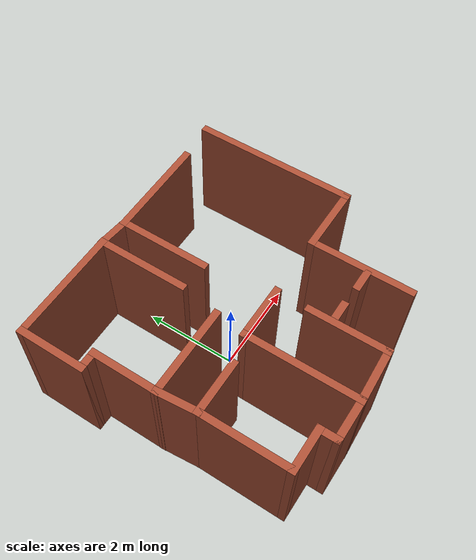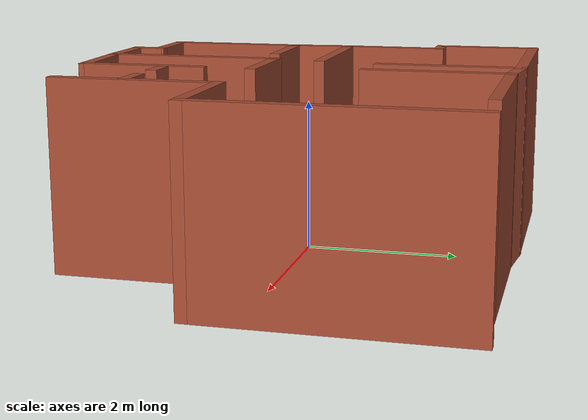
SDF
<?xml version='1.0'?>
<sdf version='1.7'>
  <model name='small_house'>
    <pose>0.316148 -0.105658 0 0 -0 0</pose>
    <link name='Wall_1'>
      <collision name='Wall_1_Collision'>
        <geometry>
          <box>
            <size>1.5 0.15 2.5</size>
          </box>
        </geometry>
        <pose>0 0 1.25 0 -0 0</pose>
      </collision>
      <visual name='Wall_1_Visual'>
        <pose>0 0 1.25 0 -0 0</pose>
        <geometry>
          <box>
            <size>1.5 0.15 2.5</size>
          </box>
        </geometry>
        <material>
          <script>
            <uri>file://media/materials/scripts/gazebo.material</uri>
            <name>Gazebo/Bricks</name>
          </script>
          <ambient>1 0.764706 0.305882 1</ambient>
        </material>
        <meta>
          <layer>0</layer>
        </meta>
      </visual>
      <pose>-2.95271 2.17924 0 0 -0 -1.5708</pose>
    </link>
    <link name='Wall_10'>
      <collision name='Wall_10_Collision'>
        <geometry>
          <box>
            <size>2.25 0.15 2.5</size>
          </box>
        </geometry>
        <pose>0 0 1.25 0 -0 0</pose>
      </collision>
      <visual name='Wall_10_Visual'>
        <pose>0 0 1.25 0 -0 0</pose>
        <geometry>
          <box>
            <size>2.25 0.15 2.5</size>
          </box>
        </geometry>
        <material>
          <script>
            <uri>file://media/materials/scripts/gazebo.material</uri>
            <name>Gazebo/Bricks</name>
          </script>
          <ambient>1 1 1 1</ambient>
        </material>
        <meta>
          <layer>0</layer>
        </meta>
      </visual>
      <pose>1.05354 2.78475 0 0 -0 0</pose>
    </link>
    <link name='Wall_12'>
      <collision name='Wall_12_Collision'>
        <geometry>
          <box>
            <size>0.760221 0.15 2.5</size>
          </box>
        </geometry>
        <pose>0 0 1.25 0 -0 0</pose>
      </collision>
      <visual name='Wall_12_Visual'>
        <pose>0 0 1.25 0 -0 0</pose>
        <geometry>
          <box>
            <size>0.760221 0.15 2.5</size>
          </box>
        </geometry>
        <material>
          <script>
            <uri>file://media/materials/scripts/gazebo.material</uri>
            <name>Gazebo/Bricks</name>
          </script>
          <ambient>1 1 1 1</ambient>
        </material>
        <meta>
          <layer>0</layer>
        </meta>
      </visual>
      <pose>-0.299588 2.81949 0 0 -0 -0.114116</pose>
    </link>
    <link name='Wall_14'>
      <collision name='Wall_14_Collision'>
        <geometry>
          <box>
            <size>3.5 0.15 2.5</size>
          </box>
        </geometry>
        <pose>0 0 1.25 0 -0 0</pose>
      </collision>
      <visual name='Wall_14_Visual'>
        <pose>0 0 1.25 0 -0 0</pose>
        <geometry>
          <box>
            <size>3.5 0.15 2.5</size>
          </box>
        </geometry>
        <material>
          <script>
            <uri>file://media/materials/scripts/gazebo.material</uri>
            <name>Gazebo/Bricks</name>
          </script>
          <ambient>1 1 1 1</ambient>
        </material>
        <meta>
          <layer>0</layer>
        </meta>
      </visual>
      <pose>2.95271 1.16415 0 0 -0 -1.5708</pose>
    </link>
    <link name='Wall_15'>
      <collision name='Wall_15_Collision'>
        <geometry>
          <box>
            <size>1.5 0.15 2.5</size>
          </box>
        </geometry>
        <pose>0 0 1.25 0 -0 0</pose>
      </collision>
      <visual name='Wall_15_Visual'>
        <pose>0 0 1.25 0 -0 0</pose>
        <geometry>
          <box>
            <size>1.5 0.15 2.5</size>
          </box>
        </geometry>
        <material>
          <script>
            <uri>file://media/materials/scripts/gazebo.material</uri>
            <name>Gazebo/Bricks</name>
          </script>
          <ambient>1 1 1 1</ambient>
        </material>
        <meta>
          <layer>0</layer>
        </meta>
      </visual>
      <pose>2.27771 -0.510849 0 0 -0 3.14159</pose>
    </link>
    <link name='Wall_17'>
      <collision name='Wall_17_Collision'>
        <geometry>
          <box>
            <size>2.25 0.15 2.5</size>
          </box>
        </geometry>
        <pose>0 0 1.25 0 -0 0</pose>
      </collision>
      <visual name='Wall_17_Visual'>
        <pose>0 0 1.25 0 -0 0</pose>
        <geometry>
          <box>
            <size>2.25 0.15 2.5</size>
          </box>
        </geometry>
        <material>
          <script>
            <uri>file://media/materials/scripts/gazebo.material</uri>
            <name>Gazebo/Bricks</name>
          </script>
          <ambient>1 1 1 1</ambient>
        </material>
        <meta>
          <layer>0</layer>
        </meta>
      </visual>
      <pose>1.60271 -1.56085 0 0 -0 -1.5708</pose>
    </link>
    <link name='Wall_19'>
      <collision name='Wall_19_Collision'>
        <geometry>
          <box>
            <size>1.25 0.15 2.5</size>
          </box>
        </geometry>
        <pose>0 0 1.25 0 -0 0</pose>
      </collision>
      <visual name='Wall_19_Visual'>
        <pose>0 0 1.25 0 -0 0</pose>
        <geometry>
          <box>
            <size>1.25 0.15 2.5</size>
          </box>
        </geometry>
        <material>
          <script>
            <uri>file://media/materials/scripts/gazebo.material</uri>
            <name>Gazebo/Bricks</name>
          </script>
          <ambient>1 1 1 1</ambient>
        </material>
        <meta>
          <layer>0</layer>
        </meta>
      </visual>
      <pose>-0.2825 -0.508981 0 0 -0 3.14159</pose>
    </link>
    <link name='Wall_2'>
      <collision name='Wall_2_Collision'>
        <geometry>
          <box>
            <size>0.5 0.15 2.5</size>
          </box>
        </geometry>
        <pose>0 0 1.25 0 -0 0</pose>
      </collision>
      <visual name='Wall_2_Visual'>
        <pose>0 0 1.25 0 -0 0</pose>
        <geometry>
          <box>
            <size>0.5 0.15 2.5</size>
          </box>
        </geometry>
        <material>
          <script>
            <uri>file://media/materials/scripts/gazebo.material</uri>
            <name>Gazebo/Bricks</name>
          </script>
          <ambient>1 1 1 1</ambient>
        </material>
        <meta>
          <layer>0</layer>
        </meta>
      </visual>
      <pose>-2.77771 1.50424 0 0 -0 0</pose>
    </link>
    <link name='Wall_20'>
      <collision name='Wall_20_Collision'>
        <geometry>
          <box>
            <size>2.5 0.15 2.5</size>
          </box>
        </geometry>
        <pose>0 0 1.25 0 -0 0</pose>
      </collision>
      <visual name='Wall_20_Visual'>
        <pose>0 0 1.25 0 -0 0</pose>
        <geometry>
          <box>
            <size>2.5 0.15 2.5</size>
          </box>
        </geometry>
        <material>
          <script>
            <uri>file://media/materials/scripts/gazebo.material</uri>
            <name>Gazebo/Bricks</name>
          </script>
          <ambient>1 1 1 1</ambient>
        </material>
        <meta>
          <layer>0</layer>
        </meta>
      </visual>
      <pose>-0.8325 -1.68398 0 0 -0 -1.5708</pose>
    </link>
    <link name='Wall_21'>
      <collision name='Wall_21_Collision'>
        <geometry>
          <box>
            <size>1 0.15 2.5</size>
          </box>
        </geometry>
        <pose>0 0 1.25 0 -0 0</pose>
      </collision>
      <visual name='Wall_21_Visual'>
        <pose>0 0 1.25 0 -0 0</pose>
        <geometry>
          <box>
            <size>1 0.15 2.5</size>
          </box>
        </geometry>
        <material>
          <script>
            <uri>file://media/materials/scripts/gazebo.material</uri>
            <name>Gazebo/Bricks</name>
          </script>
          <ambient>1 1 1 1</ambient>
        </material>
        <meta>
          <layer>0</layer>
        </meta>
      </visual>
      <pose>-1.2575 -2.85898 0 0 -0 3.14159</pose>
    </link>
    <link name='Wall_22'>
      <collision name='Wall_22_Collision'>
        <geometry>
          <box>
            <size>0.5 0.15 2.5</size>
          </box>
        </geometry>
        <pose>0 0 1.25 0 -0 0</pose>
      </collision>
      <visual name='Wall_22_Visual'>
        <pose>0 0 1.25 0 -0 0</pose>
        <geometry>
          <box>
            <size>0.5 0.15 2.5</size>
          </box>
        </geometry>
        <material>
          <script>
            <uri>file://media/materials/scripts/gazebo.material</uri>
            <name>Gazebo/Bricks</name>
          </script>
          <ambient>1 1 1 1</ambient>
        </material>
        <meta>
          <layer>0</layer>
        </meta>
      </visual>
      <pose>-1.6825 -2.68398 0 0 -0 1.5708</pose>
    </link>
    <link name='Wall_23'>
      <collision name='Wall_23_Collision'>
        <geometry>
          <box>
            <size>1 0.15 2.5</size>
          </box>
        </geometry>
        <pose>0 0 1.25 0 -0 0</pose>
      </collision>
      <visual name='Wall_23_Visual'>
        <pose>0 0 1.25 0 -0 0</pose>
        <geometry>
          <box>
            <size>1 0.15 2.5</size>
          </box>
        </geometry>
        <material>
          <script>
            <uri>file://media/materials/scripts/gazebo.material</uri>
            <name>Gazebo/Bricks</name>
          </script>
          <ambient>1 1 1 1</ambient>
        </material>
        <meta>
          <layer>0</layer>
        </meta>
      </visual>
      <pose>-2.1075 -2.50898 0 0 -0 3.14159</pose>
    </link>
    <link name='Wall_24'>
      <collision name='Wall_24_Collision'>
        <geometry>
          <box>
            <size>2 0.15 2.5</size>
          </box>
        </geometry>
        <pose>0 0 1.25 0 -0 0</pose>
      </collision>
      <visual name='Wall_24_Visual'>
        <pose>0 0 1.25 0 -0 0</pose>
        <geometry>
          <box>
            <size>2 0.15 2.5</size>
          </box>
        </geometry>
        <material>
          <script>
            <uri>file://media/materials/scripts/gazebo.material</uri>
            <name>Gazebo/Bricks</name>
          </script>
          <ambient>1 0.764706 0.305882 1</ambient>
        </material>
        <meta>
          <layer>0</layer>
        </meta>
      </visual>
      <pose>-2.5325 -1.58398 0 0 -0 1.5708</pose>
    </link>
    <link name='Wall_25'>
      <collision name='Wall_25_Collision'>
        <geometry>
          <box>
            <size>1.25 0.15 2.5</size>
          </box>
        </geometry>
        <pose>0 0 1.25 0 -0 0</pose>
      </collision>
      <visual name='Wall_25_Visual'>
        <pose>0 0 1.25 0 -0 0</pose>
        <geometry>
          <box>
            <size>1.25 0.15 2.5</size>
          </box>
        </geometry>
        <material>
          <script>
            <uri>file://media/materials/scripts/gazebo.material</uri>
            <name>Gazebo/Bricks</name>
          </script>
          <ambient>1 1 1 1</ambient>
        </material>
        <meta>
          <layer>0</layer>
        </meta>
      </visual>
      <pose>-1.9825 -0.658981 0 0 -0 0</pose>
    </link>
    <link name='Wall_27'>
      <collision name='Wall_27_Collision'>
        <geometry>
          <box>
            <size>0.966243 0.15 2.5</size>
          </box>
        </geometry>
        <pose>0 0 1.25 0 -0 0</pose>
      </collision>
      <visual name='Wall_27_Visual'>
        <pose>0 0 1.25 0 -0 0</pose>
        <geometry>
          <box>
            <size>0.966243 0.15 2.5</size>
          </box>
        </geometry>
        <material>
          <script>
            <uri>file://media/materials/scripts/gazebo.material</uri>
            <name>Gazebo/Bricks</name>
          </script>
          <ambient>1 0.764706 0.305882 1</ambient>
        </material>
        <meta>
          <layer>0</layer>
        </meta>
      </visual>
      <pose>-2.56761 -0.252373 0 0 -0 -1.48467</pose>
    </link>
    <link name='Wall_29'>
      <collision name='Wall_29_Collision'>
        <geometry>
          <box>
            <size>1.75 0.15 2.5</size>
          </box>
        </geometry>
        <pose>0 0 1.25 0 -0 0</pose>
      </collision>
      <visual name='Wall_29_Visual'>
        <pose>0 0 1.25 0 -0 0</pose>
        <geometry>
          <box>
            <size>1.75 0.15 2.5</size>
          </box>
        </geometry>
        <material>
          <script>
            <uri>file://media/materials/scripts/gazebo.material</uri>
            <name>Gazebo/Bricks</name>
          </script>
          <ambient>1 1 1 1</ambient>
        </material>
        <meta>
          <layer>0</layer>
        </meta>
      </visual>
      <pose>0.254275 -2.00991 0 0 -0 -1.5708</pose>
    </link>
    <link name='Wall_3'>
      <collision name='Wall_3_Collision'>
        <geometry>
          <box>
            <size>1.5 0.15 2.5</size>
          </box>
        </geometry>
        <pose>0 0 1.25 0 -0 0</pose>
      </collision>
      <visual name='Wall_3_Visual'>
        <pose>0 0 1.25 0 -0 0</pose>
        <geometry>
          <box>
            <size>1.5 0.15 2.5</size>
          </box>
        </geometry>
        <material>
          <script>
            <uri>file://media/materials/scripts/gazebo.material</uri>
            <name>Gazebo/Bricks</name>
          </script>
          <ambient>1 0.764706 0.305882 1</ambient>
        </material>
        <meta>
          <layer>0</layer>
        </meta>
      </visual>
      <pose>-2.60271 0.829236 0 0 -0 -1.5708</pose>
    </link>
    <link name='Wall_30'>
      <collision name='Wall_30_Collision'>
        <geometry>
          <box>
            <size>1.23788 0.15 2.5</size>
          </box>
        </geometry>
        <pose>0 0 1.25 0 -0 0</pose>
      </collision>
      <visual name='Wall_30_Visual'>
        <pose>0 0 1.25 0 -0 0</pose>
        <geometry>
          <box>
            <size>1.23788 0.15 2.5</size>
          </box>
        </geometry>
        <material>
          <script>
            <uri>file://media/materials/scripts/gazebo.material</uri>
            <name>Gazebo/Bricks</name>
          </script>
          <ambient>1 1 1 1</ambient>
        </material>
        <meta>
          <layer>0</layer>
        </meta>
      </visual>
      <pose>-0.289113 -2.83444 0 0 -0 -3.09647</pose>
    </link>
    <link name='Wall_32'>
      <collision name='Wall_32_Collision'>
        <geometry>
          <box>
            <size>0.5 0.15 2.5</size>
          </box>
        </geometry>
        <pose>0 0 1.25 0 -0 0</pose>
      </collision>
      <visual name='Wall_32_Visual'>
        <pose>0 0 1.25 0 -0 0</pose>
        <geometry>
          <box>
            <size>0.5 0.15 2.5</size>
          </box>
        </geometry>
        <material>
          <script>
            <uri>file://media/materials/scripts/gazebo.material</uri>
            <name>Gazebo/Bricks</name>
          </script>
          <ambient>1 1 1 1</ambient>
        </material>
        <meta>
          <layer>0</layer>
        </meta>
      </visual>
      <pose>0.5046 -1.69093 0 0 -0 0</pose>
    </link>
    <link name='Wall_34'>
      <collision name='Wall_34_Collision'>
        <geometry>
          <box>
            <size>0.5 0.15 2.5</size>
          </box>
        </geometry>
        <pose>0 0 1.25 0 -0 0</pose>
      </collision>
      <visual name='Wall_34_Visual'>
        <pose>0 0 1.25 0 -0 0</pose>
        <geometry>
          <box>
            <size>0.5 0.15 2.5</size>
          </box>
        </geometry>
        <material>
          <script>
            <uri>file://media/materials/scripts/gazebo.material</uri>
            <name>Gazebo/Bricks</name>
          </script>
          <ambient>1 1 1 1</ambient>
        </material>
        <meta>
          <layer>0</layer>
        </meta>
      </visual>
      <pose>1.33777 -1.71738 0 0 -0 0</pose>
    </link>
    <link name='Wall_4'>
      <collision name='Wall_4_Collision'>
        <geometry>
          <box>
            <size>2 0.15 2.5</size>
          </box>
        </geometry>
        <pose>0 0 1.25 0 -0 0</pose>
      </collision>
      <visual name='Wall_4_Visual'>
        <pose>0 0 1.25 0 -0 0</pose>
        <geometry>
          <box>
            <size>2 0.15 2.5</size>
          </box>
        </geometry>
        <material>
          <script>
            <uri>file://media/materials/scripts/gazebo.material</uri>
            <name>Gazebo/Bricks</name>
          </script>
          <ambient>1 1 1 1</ambient>
        </material>
        <meta>
          <layer>0</layer>
        </meta>
      </visual>
      <pose>-1.67771 0.154236 0 0 -0 0</pose>
    </link>
    <link name='Wall_6'>
      <collision name='Wall_6_Collision'>
        <geometry>
          <box>
            <size>2.5 0.15 2.5</size>
          </box>
        </geometry>
        <pose>0 0 1.25 0 -0 0</pose>
      </collision>
      <visual name='Wall_6_Visual'>
        <pose>0 0 1.25 0 -0 0</pose>
        <geometry>
          <box>
            <size>2.5 0.15 2.5</size>
          </box>
        </geometry>
        <material>
          <script>
            <uri>file://media/materials/scripts/gazebo.material</uri>
            <name>Gazebo/Bricks</name>
          </script>
          <ambient>1 1 1 1</ambient>
        </material>
        <meta>
          <layer>0</layer>
        </meta>
      </visual>
      <pose>-1.77771 2.85424 0 0 -0 0</pose>
    </link>
    <link name='Wall_7'>
      <collision name='Wall_7_Collision'>
        <geometry>
          <box>
            <size>2 0.15 2.5</size>
          </box>
        </geometry>
        <pose>0 0 1.25 0 -0 0</pose>
      </collision>
      <visual name='Wall_7_Visual'>
        <pose>0 0 1.25 0 -0 0</pose>
        <geometry>
          <box>
            <size>2 0.15 2.5</size>
          </box>
        </geometry>
        <material>
          <script>
            <uri>file://media/materials/scripts/gazebo.material</uri>
            <name>Gazebo/Bricks</name>
          </script>
          <ambient>1 1 1 1</ambient>
        </material>
        <meta>
          <layer>0</layer>
        </meta>
      </visual>
      <pose>-0.602714 1.92924 0 0 -0 -1.5708</pose>
    </link>
    <link name='Wall_9'>
      <collision name='Wall_9_Collision'>
        <geometry>
          <box>
            <size>2 0.15 2.5</size>
          </box>
        </geometry>
        <pose>0 0 1.25 0 -0 0</pose>
      </collision>
      <visual name='Wall_9_Visual'>
        <pose>0 0 1.25 0 -0 0</pose>
        <geometry>
          <box>
            <size>2 0.15 2.5</size>
          </box>
        </geometry>
        <material>
          <script>
            <uri>file://media/materials/scripts/gazebo.material</uri>
            <name>Gazebo/Bricks</name>
          </script>
          <ambient>1 1 1 1</ambient>
        </material>
        <meta>
          <layer>0</layer>
        </meta>
      </visual>
      <pose>0.003538 1.85975 0 0 -0 1.5708</pose>
    </link>
    <static>1</static>
  </model>
</sdf>
